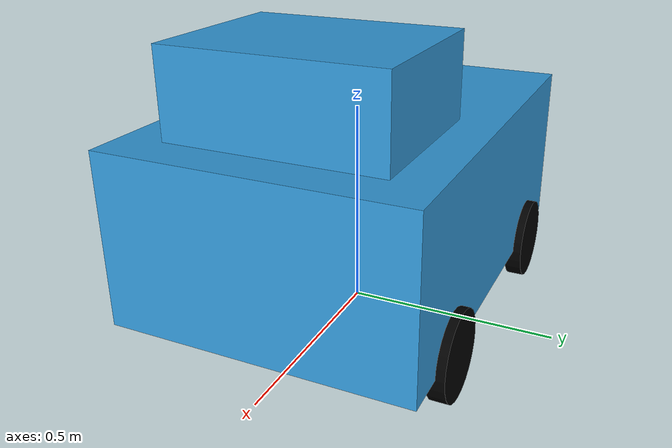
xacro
<?xml version="1.0"?>
<robot xmlns:xacro="http://www.ros.org/wiki/xacro" name="pomdp_car">
  <link name="base_link">
  <inertial>
    <mass value="1"/>
    <inertia ixx="100" ixy="0" ixz="0" iyy="100" iyz="0" izz="100" />
    <origin/>
  </inertial>
    <visual>
      <geometry>
        <box size="1.0 0.7 0.4"/>
      </geometry>
      <origin rpy="0 0 0" xyz="0 0 0.3"/>
      <material name="white">
        <color rgba="0.2 0.6 0.85 1"/>
      </material>
    </visual>
  </link>

 <link name="lwheel">
    <visual>
      <geometry>
        <cylinder length="0.04" radius="0.1"/>
      </geometry>
      <origin rpy="0 0 0" xyz="0 0 0"/>
      <material name="black">
        <color rgba="0 0 0 1"/>
      </material>
    </visual>
  </link>

  <joint name="base_to_lwheel" type="fixed">
    <parent link="base_link"/>
    <child link="lwheel"/>
    <origin xyz="-0.3 -0.35 0.1" rpy="1.5708 0 0"/>
    <axis xy="0 0 0" />
  </joint>

 <link name="rwheel">
    <visual>
      <geometry>
        <cylinder length="0.04" radius="0.1"/>
      </geometry>
      <origin rpy="0 0 0" xyz="0 0 0"/>
      <material name="black">
        <color rgba="0 0 0 1"/>
      </material>
    </visual>
  </link>

<!-- LEFT WHEEL -->
  <joint name="base_to_rwheel" type="fixed">
    <axis xyz="0 1 0"/>
    <parent link="base_link"/>
    <child link="rwheel"/>
    <origin xyz="0.3 0.35 0.1" rpy="-1.5708 0 0"/>
  </joint>

  <link name="fwheel_left">
    <visual>
      <geometry>
        <cylinder length="0.04" radius="0.1"/>
      </geometry>
      <origin rpy="0 0 0" xyz="0 0 0"/>
      <material name="black">
        <color rgba="0 0 0 1"/>
      </material>
    </visual>
  </link>

<!-- RIGHT WHEEL -->
  <joint name="base_to_fwheel_left" type="fixed">
    <axis xyz="0 -1 0"/>
    <parent link="base_link"/>
    <child link="fwheel_left"/>
    <origin xyz="0.3 -0.35 0.1" rpy="1.5708 0 0"/>
    <mimic joint="base_to_rwheel" multiplier="1" offset="0"/>
  </joint>

  <link name="fwheel_right">
    <visual>
      <geometry>
        <cylinder length="0.04" radius="0.1"/>
      </geometry>
      <origin rpy="0 0 0" xyz="0 0 0"/>
      <material name="black">
        <color rgba="0 0 0 1"/>
      </material>
    </visual>
  </link>

  <joint name="base_to_fwheel_right" type="fixed">
    <parent link="base_link"/>
    <child link="fwheel_right"/>
    <origin xyz="-0.3 0.35 0.1" rpy="-1.5708 0 0"/>
  </joint>

   <link name="roof">
    <visual>
      <geometry>
        <box size="0.4 0.5 0.2"/>
      </geometry>
      <origin rpy="0 0 0" xyz="0 0 0"/>
      <material name="white">
        <color rgba="0.2 0.6 0.85 1"/>
      </material>
    </visual>
  </link>

  <joint name="roof_to_car" type="fixed">
    <parent link="base_link"/>
    <child link="roof"/>
    <origin xyz="0.2 0 0.6" rpy="0 0 0"/>
  </joint>

</robot>
